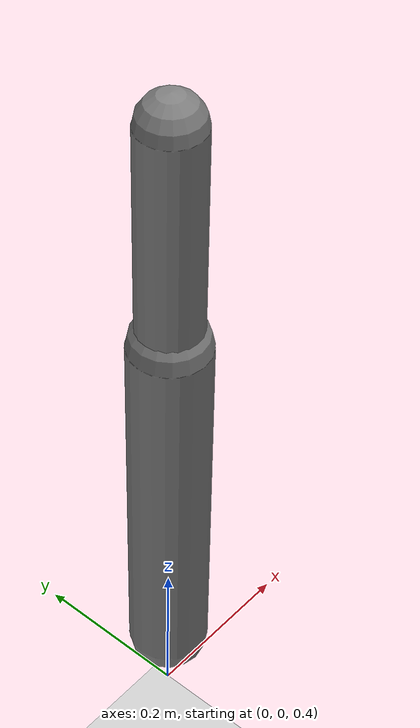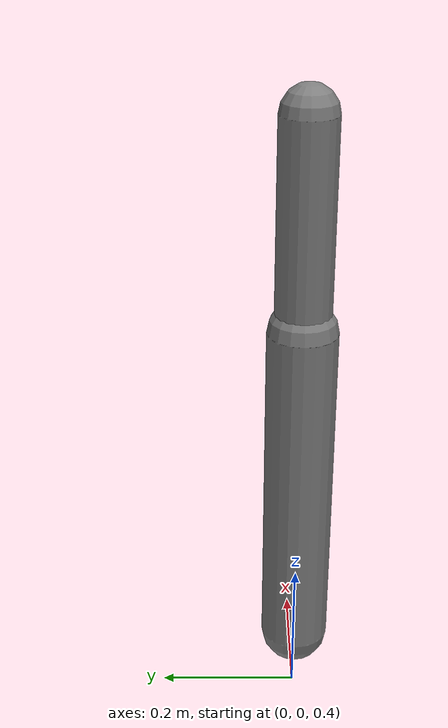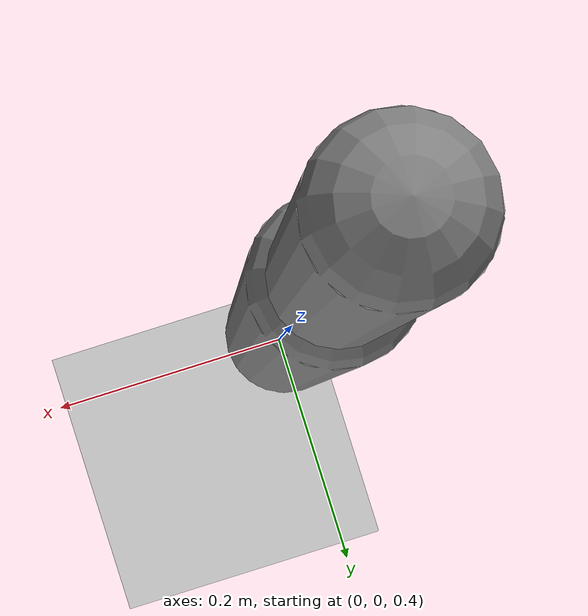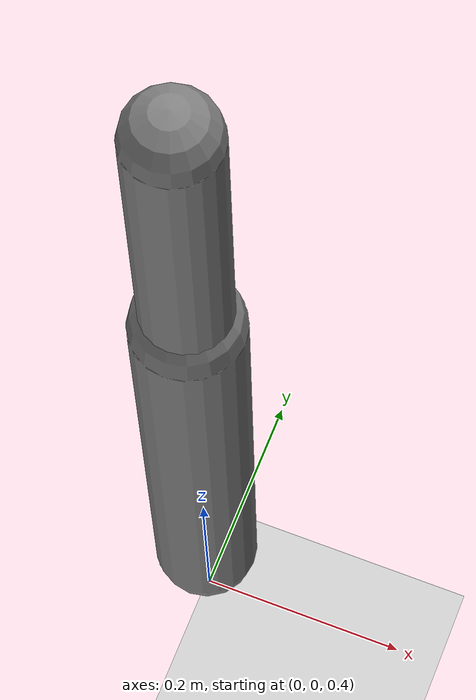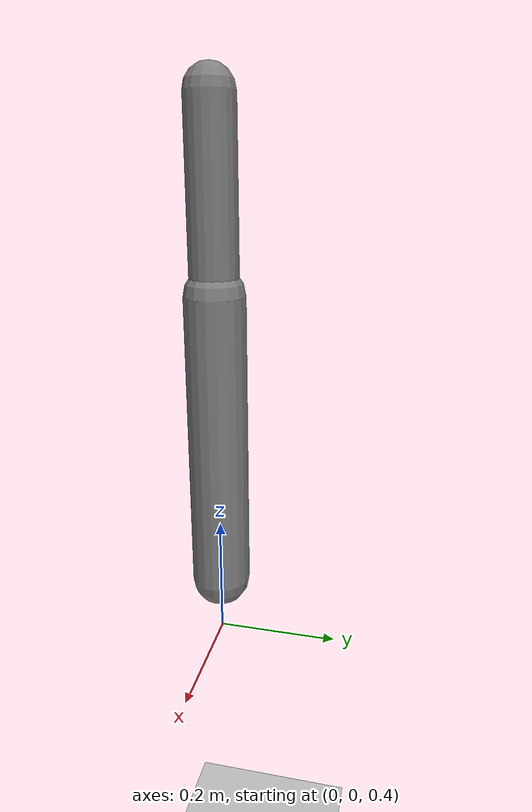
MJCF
<?xml version='1.0' encoding='UTF-8'?>
<mujoco model="RobotModel">
  <option gravity="0 0 -9.81" timestep="0.002" solver="CG" iterations="500" integrator="Euler"/>
  <worldbody>
    <geom name="Floor" type="plane" size="10 10 0.1" pos="0 0 0" rgba="0.8 0.8 0.8 1"/>
    <body name="Limb0" pos="0 0 0.5">
      <geom type="capsule" fromto="0 0 0 0 0 0.4918963253026064" size="0.04878486430220508" density="1000" contype="0" conaffinity="0"/>
      <body name="Limb0_cd4b1fcf" pos="0 0 0.5">
        <geom type="capsule" fromto="0 0 0 0 0 0.2833147692051466" size="0.038893773390034116" density="800" contype="0" conaffinity="0"/>
        <joint name="Joint_Limb0_Limb0_cd4b1fcf_0" type="hinge" axis="1 0 0" range="-60 60"/>
      </body>
      <body name="Limb1_cd4b1fcf" pos="0 0 0.5">
        <geom type="capsule" fromto="0 0 0 0 0 0.16738877786064643" size="0.033173036764843455" density="800" contype="0" conaffinity="0"/>
        <joint name="Joint_Limb0_Limb1_cd4b1fcf_0" type="hinge" axis="0 1 0" range="-45 45"/>
      </body>
    </body>
  </worldbody>
  <actuator>
    <position name="position_Actuator_Joint_Limb0_Limb0_cd4b1fcf_0" joint="Joint_Limb0_Limb0_cd4b1fcf_0" gear="1.0"/>
    <position name="position_Actuator_Joint_Limb0_Limb1_cd4b1fcf_0" joint="Joint_Limb0_Limb1_cd4b1fcf_0" gear="1.0"/>
  </actuator>
</mujoco>
